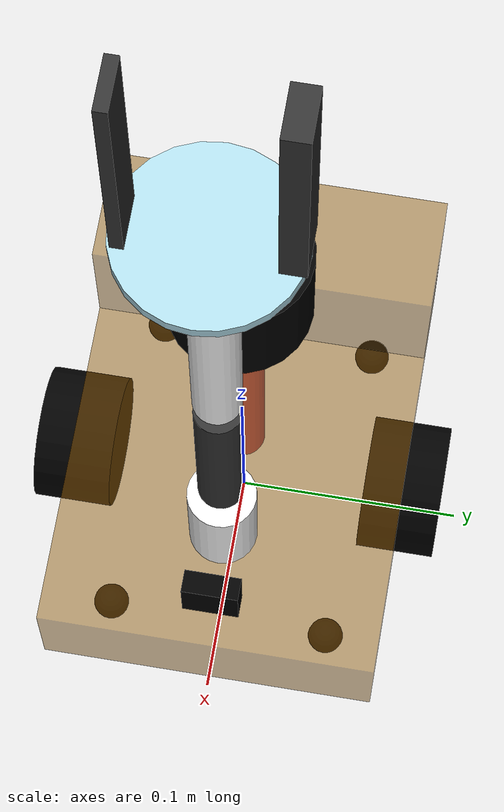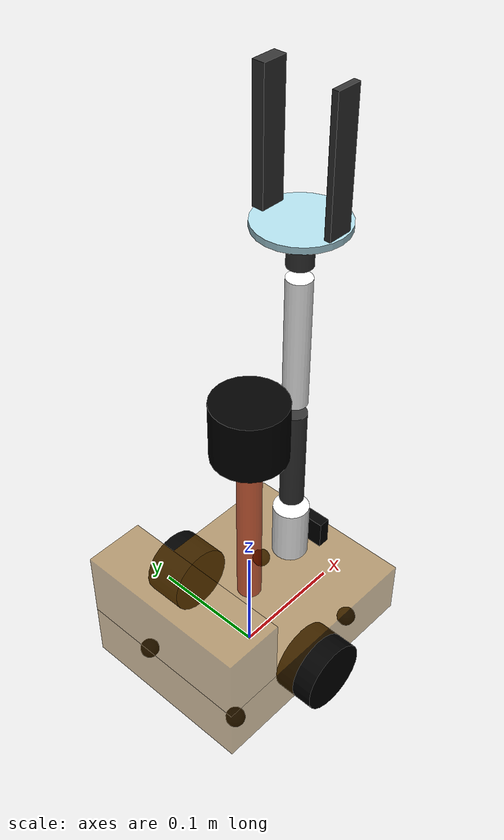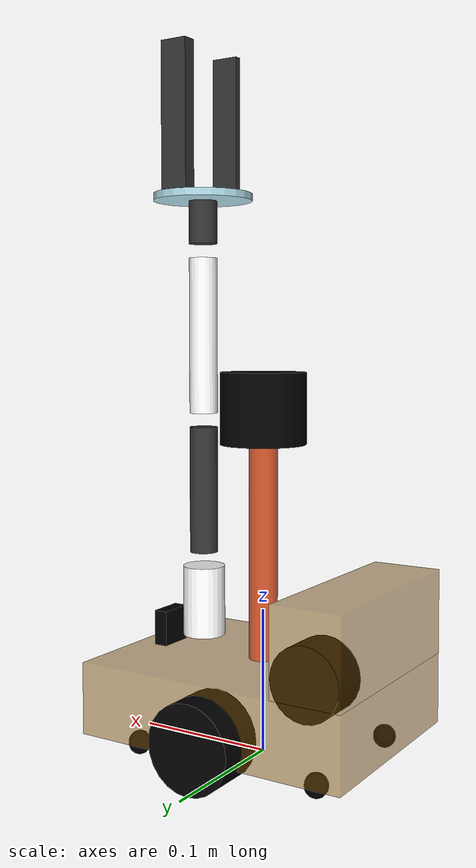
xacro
<robot name="my_car" xmlns:xacro="http://wiki.ros.org/xacro">
    <xacro:include filename="materials.xacro" />
    <xacro:include filename="inertial.xacro" />
    <xacro:include filename="my_base.urdf.xacro" />
    <xacro:include filename="my_camera.urdf.xacro" />
    <xacro:include filename="my_laser.urdf.xacro" />
    <xacro:include filename="move.urdf.xacro" />
    <xacro:include filename="camera_gazebo.urdf.xacro" />
    <xacro:include filename="laser_gazebo.urdf.xacro" />
    <xacro:include filename="car_arm.urdf.xacro" />
    <xacro:include filename="imu_gazebo.xacro" />
</robot>

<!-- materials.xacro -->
<robot name="material" xmlns:xacro="http://wiki.ros.org/xacro">
  <material name="black">
    <color rgba="0.0 0.0 0.0 1.0"/>
  </material>
  <material name="blue">
    <color rgba="0.0 0.0 0.8 1.0"/>
  </material>
  <material name="green">
    <color rgba="0.0 0.8 0.0 1.0"/>
  </material>
  <material name="grey">
    <color rgba="0.2 0.2 0.2 1.0"/>
  </material>
  <material name="orange">
    <color rgba="${255/255} ${108/255} ${10/255} 1.0"/>
  </material>
  <material name="brown">
    <color rgba="${222/255} ${207/255} ${195/255} 1.0"/>
  </material>
  <material name="red">
    <color rgba="0.8 0.0 0.0 1.0"/>
  </material>
  <material name="white">
    <color rgba="1.0 1.0 1.0 1.0"/>
  </material>
  <material name="yellow">
    <color rgba="1.0 1.0 0.0 1.0"/>
  </material>
  <material name="purple">
    <color rgba="0.5 0.0 0.5 1.0"/>
  </material>
  <material name="pink">
    <color rgba="1.0 0.75 0.8 1.0"/>
  </material>
  <material name="cyan">
    <color rgba="0.0 1.0 1.0 1.0"/>
  </material>
  <material name="magenta">
    <color rgba="1.0 0.0 1.0 1.0"/>
  </material>
  <material name="light_blue">
    <color rgba="0.68 0.85 0.9 1.0"/>
  </material>
  <material name="dark_green">
    <color rgba="0.0 0.39 0.0 1.0"/>
  </material>
  <material name="olive">
    <color rgba="0.5 0.5 0.0 1.0"/>
  </material>
  <material name="teal">
    <color rgba="0.0 0.5 0.5 1.0"/>
  </material>
</robot>

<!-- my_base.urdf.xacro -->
<robot name="my_base" xmlns:xacro="http://www.ros.org/wiki/xacro">
    <xacro:property name="PI" value="3.14159"/>
    <xacro:property name="base_footprint_radius" value="0.001" />
    <xacro:property name="base_link_l" value="0.2" />
    <xacro:property name="base_link_w" value="0.15" />
    <xacro:property name="base_link_h" value="0.05" />
    <xacro:property name="heavy_link_l" value="0.05" />
    <xacro:property name="heavy_link_w" value="0.15" />
    <xacro:property name="heavy_link_h" value="0.06" />
    <xacro:property name="heavy_link_m" value="0.5" />
    <xacro:property name="earth_space" value="0.016" />
    <!-- 离地间距 -->
    <xacro:property name="base_link_m" value="1.5" />
    <!-- 底盘 -->
    <link name="base_footprint">
        <visual>
            <geometry>
                <sphere radius="${base_footprint_radius}" />
            </geometry>
        </visual>
    </link>
    <link name="base_link">
        <visual>
            <geometry>
                <box size="${base_link_l} ${base_link_w} ${base_link_h}" />
            </geometry>
            <origin xyz="0 0 0" rpy="0 0 0" />
            <material name="white">
                <color rgba="0.5 0.3 0.0 0.5" />
            </material>
        </visual>
        <collision>
            <geometry>
                <box size="${base_link_l} ${base_link_w} ${base_link_h}" />
                <origin xyz="0 0 0" rpy="0 0 0" />
            </geometry>
        </collision>
        <xacro:Box_inertial_matrix m="${base_link_m}" l="${base_link_l}" w="${base_link_w}" h="${base_link_h}" />
    </link>
    <joint name="base_link2base_footprint" type="fixed">
        <parent link="base_footprint" />
        <child link="base_link" />
        <origin xyz="0 0 ${earth_space + base_link_h / 2 }" />
    </joint>
    <gazebo reference="base_link">
        <material>Gazebo/Blue</material>
    </gazebo>
    <link name="heavy_link">
        <visual>
            <geometry>
                <box size="${heavy_link_l} ${heavy_link_w} ${heavy_link_h}" />
            </geometry>
            <origin xyz="0 0 0" rpy="0 0 0" />
            <material name="white">
                <color rgba="0.5 0.3 0.0 0.5" />
            </material>
        </visual>
        <collision>
            <geometry>
                <box size="${heavy_link_l} ${heavy_link_w} ${heavy_link_h}" />
                <origin xyz="0 0 0" rpy="0 0 0" />
            </geometry>
        </collision>
        <xacro:Box_inertial_matrix m="${heavy_link_m}" l="${heavy_link_l}" w="${heavy_link_w}" h="${heavy_link_h}" />
    </link>
    <joint name="heavy_link2base_link" type="fixed">
        <parent link="base_link" />
        <child link="heavy_link" />
        <origin xyz="${-(base_link_l / 2 -heavy_link_l/2)} 0 ${base_link_h / 2+ heavy_link_h / 2 }" />
    </joint>
    <gazebo reference="heavy_link">
        <material>Gazebo/Blue</material>
    </gazebo>
    <!-- 驱动轮 -->
    <xacro:property name="wheel_radius" value="0.03" />
    <xacro:property name="wheel_length" value="0.035" />
    <xacro:property name="wheel_m" value="0.1" />
    <xacro:macro name="add_wheels" params="name flag">
        <link name="${name}_wheel">
            <visual>
                <geometry>
                    <cylinder radius="${wheel_radius}" length="${wheel_length}" />
                </geometry>
                <origin xyz="0.0 0.0 0.0" rpy="${PI / 2} 0.0 0.0" />
                <material name="black" />
            </visual>
            <collision>
                <geometry>
                    <cylinder radius="${wheel_radius}" length="${wheel_length}" />
                </geometry>
                <origin xyz="0.0 0.0 0.0" rpy="${PI / 2} 0.0 0.0" />
            </collision>
            <xacro:cylinder_inertial_matrix m="${wheel_m}" r="${wheel_radius}" h="${wheel_length}" />
        </link>
        <joint name="${name}_wheel2base_link" type="continuous">
            <parent link="base_link" />
            <child link="${name}_wheel" />
            <origin xyz="0 ${flag * base_link_w/2} ${-(earth_space + base_link_h / 2 - wheel_radius) }" />
            <axis xyz="0 1 0" />
        </joint>
        <gazebo reference="${name}_wheel">
            <material>Gazebo/Black</material>
            <mu1>100000000</mu1>
            <mu2>100000000</mu2>
            <kp>100000000</kp>
            <kd>1</kd>
        </gazebo>
    </xacro:macro>
    <xacro:add_wheels name="left" flag="1" />
    <xacro:add_wheels name="right" flag="-1" />
    <xacro:property name="support_wheel_radius" value="0.008" />
    <xacro:property name="support_wheel_distance" value="0.03" />
    <xacro:property name="support_wheel_m" value="0.03" />
    <!-- 支撑轮宏 -->
    <xacro:macro name="add_support_wheel" params="name flag number" >
        <link name="${name}_wheel_${number}">
            <visual>
                <geometry>
                    <sphere radius="${support_wheel_radius}" />
                </geometry>
                <origin xyz="0 0 0" rpy="0 0 0" />
                <material name="black" />
            </visual>
            <collision>
                <geometry>
                    <sphere radius="${support_wheel_radius}" />
                </geometry>
                <origin xyz="0 0 0" rpy="0 0 0" />
            </collision>
            <xacro:sphere_inertial_matrix m="${support_wheel_m}" r="${support_wheel_radius}" />
        </link>
        <joint name="${name}_wheel2base_link_${number}" type="continuous">
            <parent link="base_link" />
            <child link="${name}_wheel_${number}" />
            <origin xyz="${flag * (base_link_l / 2 - support_wheel_distance)} ${-0.05*(number-1)-0.05*(number-2)} ${-(base_link_h / 2 + support_wheel_radius)}" />
            <axis xyz="1 1 1" />
        </joint>
        <gazebo reference="${name}_wheel_${number}">
            <material>Gazebo/Black</material>
            <kp>100000000</kp>
            <kd>1</kd>
        </gazebo>
    </xacro:macro>
    <xacro:add_support_wheel name="front" flag="1" number="1"/>
    <xacro:add_support_wheel name="front" flag="1" number="2"/>
    <xacro:add_support_wheel name="back" flag="-1" number="1"/>
    <xacro:add_support_wheel name="back" flag="-1" number="2"/>
</robot>

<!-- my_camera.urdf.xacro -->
<!-- 摄像头相关的 xacro 文件 -->
<robot name="my_camera" xmlns:xacro="http://wiki.ros.org/xacro">
    <!-- 摄像头属性 -->
    <xacro:property name="camera_length" value="0.01" /> <!-- 摄像头长度(x) -->
    <xacro:property name="camera_width" value="0.025" /> <!-- 摄像头宽度(y) -->
    <xacro:property name="camera_height" value="0.025" /> <!-- 摄像头高度(z) -->
    <xacro:property name="camera_x" value="0.08" /> <!-- 摄像头安装的x坐标 -->
    <xacro:property name="camera_y" value="0.0" /> <!-- 摄像头安装的y坐标 -->
    <xacro:property name="camera_z" value="${base_link_h / 2 + camera_height / 2}" /> <!-- 摄像头安装的z坐标:底盘高度 / 2 + 摄像头高度 / 2  -->

    <xacro:property name="camera_m" value="0.01" /> <!-- 摄像头质量 -->

    <!-- 摄像头关节以及link -->
    <link name="camera">
        <visual>
            <geometry>
                <box size="${camera_length} ${camera_width} ${camera_height}" />
            </geometry>
            <origin xyz="0.0 0.0 0.0" rpy="0.0 0.0 0.0" />
            <material name="black" />
        </visual>
        <collision>
            <geometry>
                <box size="${camera_length} ${camera_width} ${camera_height}" />
            </geometry>
            <origin xyz="0.0 0.0 0.0" rpy="0.0 0.0 0.0" />
        </collision>
        <xacro:Box_inertial_matrix m="${camera_m}" l="${camera_length}" w="${camera_width}" h="${camera_height}" />
    </link>

    <joint name="camera2base_link" type="fixed">
        <parent link="base_link" />
        <child link="camera" />
        <origin xyz="${camera_x} ${camera_y} ${camera_z}" />
    </joint>
    <gazebo reference="camera">
        <material>Gazebo/Blue</material>
    </gazebo>
</robot>

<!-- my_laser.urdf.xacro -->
<!--
    小车底盘添加雷达
-->
<robot name="my_laser" xmlns:xacro="http://wiki.ros.org/xacro">

    <!-- 雷达支架 -->
    <xacro:property name="support_length" value="0.15" /> <!-- 支架长度 -->
    <xacro:property name="support_radius" value="0.01" /> <!-- 支架半径 -->
    <xacro:property name="support_x" value="0.0" /> <!-- 支架安装的x坐标 -->
    <xacro:property name="support_y" value="0.0" /> <!-- 支架安装的y坐标 -->
    <xacro:property name="support_z" value="${base_link_h / 2 + support_length / 2}" /> <!-- 支架安装的z坐标:底盘高度 / 2 + 支架高度 / 2  -->

    <xacro:property name="support_m" value="0.02" /> <!-- 支架质量 -->

    <link name="support">
        <visual>
            <geometry>
                <cylinder radius="${support_radius}" length="${support_length}" />
            </geometry>
            <origin xyz="0.0 0.0 0.0" rpy="0.0 0.0 0.0" />
            <material name="red">
                <color rgba="0.8 0.2 0.0 0.8" />
            </material>
        </visual>

        <collision>
            <geometry>
                <cylinder radius="${support_radius}" length="${support_length}" />
            </geometry>
            <origin xyz="0.0 0.0 0.0" rpy="0.0 0.0 0.0" />
        </collision>

        <xacro:cylinder_inertial_matrix m="${support_m}" r="${support_radius}" h="${support_length}" />

    </link>

    <joint name="support2base_link" type="fixed">
        <parent link="base_link" />
        <child link="support" />
        <origin xyz="${support_x} ${support_y} ${support_z}" />
    </joint>

    <gazebo reference="support">
        <material>Gazebo/White</material>
    </gazebo>

    <!-- 雷达属性 -->
    <xacro:property name="laser_length" value="0.05" /> <!-- 雷达长度 -->
    <xacro:property name="laser_radius" value="0.03" /> <!-- 雷达半径 -->
    <xacro:property name="laser_x" value="0.0" /> <!-- 雷达安装的x坐标 -->
    <xacro:property name="laser_y" value="0.0" /> <!-- 雷达安装的y坐标 -->
    <xacro:property name="laser_z" value="${support_length / 2 + laser_length / 2}" /> <!-- 雷达安装的z坐标:支架高度 / 2 + 雷达高度 / 2  -->

    <xacro:property name="laser_m" value="0.1" /> <!-- 雷达质量 -->

    <!-- 雷达关节以及link -->
    <link name="laser">
        <visual>
            <geometry>
                <cylinder radius="${laser_radius}" length="${laser_length}" />
            </geometry>
            <origin xyz="0.0 0.0 0.0" rpy="0.0 0.0 0.0" />
            <material name="black" />
        </visual>
        <collision>
            <geometry>
                <cylinder radius="${laser_radius}" length="${laser_length}" />
            </geometry>
            <origin xyz="0.0 0.0 0.0" rpy="0.0 0.0 0.0" />
        </collision>
        <xacro:cylinder_inertial_matrix m="${laser_m}" r="${laser_radius}" h="${laser_length}" />
    </link>

    <joint name="laser2support" type="fixed">
        <parent link="support" />
        <child link="laser" />
        <origin xyz="${laser_x} ${laser_y} ${laser_z}" />
    </joint>
    <gazebo reference="laser">
        <material>Gazebo/Black</material>
    </gazebo>
</robot>

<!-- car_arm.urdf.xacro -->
<robot name="car_arm" xmlns:xacro="http://ros.org/wiki/xacro">
    <!-- Defining the colors used in this robot -->
    <!-- link1 properties -->
    <xacro:property name="PI" value="3.1415926" />

    <xacro:property name="link1_width" value="0.015" />
    <xacro:property name="link1_len" value="0.05" />
    <xacro:property name="link1_m" value="0.02" />
    <!-- link2 properties -->
    <xacro:property name="link2_width" value="0.01" />
    <xacro:property name="link2_len" value="0.09" />
    <xacro:property name="link2_m" value="0.02" />
    <!-- link3 properties -->
    <xacro:property name="link3_width" value="0.01" />
    <xacro:property name="link3_len" value="0.11" />
    <xacro:property name="link3_m" value="0.02" />
    <!-- link4 properties -->
    <xacro:property name="link4_width" value="0.01" />
    <xacro:property name="link4_len" value="0.03" />
    <xacro:property name="link4_m" value="0.02" />
    <!-- link5 properties -->
    <xacro:property name="link5_width" value="0.035" />
    <xacro:property name="link5_len" value="0.005" />
    <xacro:property name="link5_m" value="0.02" />
    <!-- Left gripper -->
    <xacro:property name="left_gripper_len" value="0.1" />
    <xacro:property name="left_gripper_width" value="0.01" />
    <xacro:property name="left_gripper_h" value="0.02" />
    <xacro:property name="left_gripper_m" value="0.02" />
    <!-- Right gripper -->
    <xacro:property name="right_gripper_len" value="0.1" />
    <xacro:property name="right_gripper_width" value="0.005" />
    <xacro:property name="right_gripper_h" value="0.02" />
    <xacro:property name="right_gripper_m" value="0.02" />
    <!-- Gripper frame -->
    <xacro:property name="grasp_frame_radius" value="0.001" />
    <!-- /////////////////////////////////////   LINK1  ////////////////////////////////////////////// -->
    <link name="link1" >
        <visual>
            <origin xyz="0 0 ${link1_len/2}" rpy="0 0 0" />
            <geometry>
                <cylinder radius="${link1_width}" length="${link1_len}"/>
            </geometry>
            <material name="white" />
        </visual>
        <collision>
            <origin xyz="0  0 ${link1_len/2}" rpy="0 0 0" />
            <geometry>
                <cylinder radius="${link1_width}" length="${link1_len}"/>
            </geometry>
        </collision>
        <xacro:cylinder_inertial_matrix m="${link1_m}" r="${link1_width}" h="${link1_len}" />
    </link>
    <joint name="joint1" type="revolute">
        <parent link="base_link"/>
        <child link="link1"/>
        <origin xyz="0.05 0 ${base_link_h / 2 + 0.01}" rpy="0 0 0" />
        <axis xyz="0 0 1" />
        <limit effort="300" velocity="1" lower="-2.96" upper="2.96"/>

    </joint>
    <link name="link2" >
        <visual>
            <origin xyz="0 0 ${link2_len/2}" rpy="0 0 0" />
            <geometry>
                <cylinder radius="${link2_width}" length="${link2_len}"/>
            </geometry>
            <material name="grey" />
        </visual>
        <collision>
            <origin xyz="0  0 ${link2_len/2}" rpy="0 0 0" />
            <geometry>
                <cylinder radius="${link2_width}" length="${link2_len}"/>
            </geometry>
        </collision>
        <xacro:cylinder_inertial_matrix m="${link2_m}" r="${link2_width}" h="${link2_len}" />
    </link>
    <joint name="joint2" type="revolute">
        <parent link="link1"/>
        <child link="link2"/>
        <origin xyz="0 0 ${link1_len+0.01}" rpy="0 0 0" />
        <axis xyz="0 1 0" />
        <limit effort="300" velocity="1" lower="${-PI/2}" upper="${PI/2}"/>
    </joint>
    <link name="link3" >
        <visual>
            <origin xyz="0 0 ${link3_len/2}" rpy="0 0 0" />
            <geometry>
                <cylinder radius="${link3_width}" length="${link3_len}"/>
            </geometry>
            <material name="white" />
        </visual>
        <collision>
            <origin xyz="0  0 ${link3_len/2}" rpy="0 0 0" />
            <geometry>
                <cylinder radius="${link3_width}" length="${link3_len}"/>
            </geometry>
        </collision>
        <xacro:cylinder_inertial_matrix m="${link3_m}" r="${link3_width}" h="${link3_len}" />
    </link>
    <joint name="joint3" type="revolute">
        <parent link="link2"/>
        <child link="link3"/>
        <origin xyz="0 0 ${link2_len+0.01}" rpy="0 0 0" />
        <axis xyz="0 1 0" />
        <limit effort="300" velocity="1" lower="${-PI/2}" upper="${PI/2}"/>
    </joint>
    <link name="link4" >
        <visual>
            <origin xyz="0 0 ${link4_len/2}" rpy="0 0 0" />
            <geometry>
                <cylinder radius="${link4_width}" length="${link4_len}"/>
            </geometry>
            <material name="grey" />
        </visual>
        <collision>
            <origin xyz="0  0 ${link4_len/2}" rpy="0 0 0" />
            <geometry>
                <cylinder radius="${link4_width}" length="${link4_len}"/>
            </geometry>
        </collision>
        <xacro:cylinder_inertial_matrix m="${link4_m}" r="${link4_width}" h="${link4_len}" />
    </link>
    <joint name="joint4" type="revolute">
        <parent link="link3"/>
        <child link="link4"/>
        <origin xyz="0 0 ${link3_len+0.01}" rpy="0 0 0" />
        <axis xyz="0 1 0" />
        <limit effort="300" velocity="1" lower="${-PI/2}" upper="${PI/2}"/>
    </joint>
    <link name="link5" >
        <visual>
            <origin xyz="0 0 ${link5_len/2}" rpy="0 0 0" />
            <geometry>
                <cylinder radius="${link5_width}" length="${link5_len}"/>
            </geometry>
            <material name="light_blue" />
        </visual>
        <collision>
            <origin xyz="0  0 ${link5_len/2}" rpy="0 0 0" />
            <geometry>
                <cylinder radius="${link5_width}" length="${link5_len}"/>
            </geometry>
        </collision>
        <xacro:cylinder_inertial_matrix m="${link5_m}" r="${link5_width}" h="${link5_len}" />
    </link>
    <joint name="joint5" type="revolute">
        <parent link="link4"/>
        <child link="link5"/>
        <origin xyz="0 0 ${link4_len}" rpy="0 0 0" />
        <axis xyz="0 0 1" />
        <limit effort="300" velocity="1" lower="${-PI}" upper="${PI}"/>
    </joint>
    <link name="left_gripper" >
        <visual>
            <origin xyz="0 0 ${left_gripper_len/2}" rpy="0 ${PI/2} 0" />
            <geometry>
                <box size="${left_gripper_len} ${left_gripper_width} ${left_gripper_h}" />
            </geometry>
            <material name="grey" />
        </visual>
        <collision>
            <origin xyz="0 0 ${left_gripper_len/2}" rpy="0 ${PI/2} 0" />
            <geometry>
                <box size="${left_gripper_len} ${left_gripper_width} ${left_gripper_h}" />
            </geometry>
        </collision>
        <xacro:Box_inertial_matrix m="${left_gripper_m}" l="${left_gripper_len}" w="${left_gripper_width}" h="${left_gripper_h}" />
    </link>
    <joint name="left_gripper_joint" type="prismatic">
        <parent link="link5"/>
        <child link="left_gripper"/>
        <origin xyz="0 0.03 ${link5_len}" rpy="0 0 0" />
        <axis xyz="0 1 0" />
        <limit effort="100" lower="0" upper="0.05" velocity="1.0"/>
    </joint>
    <link name="right_gripper" >
        <visual>
            <origin xyz="0 0 ${right_gripper_len/2}" rpy="0 ${PI/2} 0" />
            <geometry>
                <box size="${right_gripper_len} ${right_gripper_width} ${right_gripper_h}" />
            </geometry>
            <material name="grey" />
        </visual>
        <collision>
            <origin xyz="0 0 ${right_gripper_len/2}" rpy="0 ${PI/2} 0" />
            <geometry>
                <box size="${right_gripper_len} ${right_gripper_width} ${right_gripper_h}" />
            </geometry>
        </collision>
        <xacro:Box_inertial_matrix m="${right_gripper_m}" l="${right_gripper_len}" w="${right_gripper_width}" h="${right_gripper_h}" />
    </link>
    <joint name="right_gripper_joint" type="prismatic">
        <parent link="link5"/>
        <child link="right_gripper"/>
        <origin xyz="0 -0.03 ${link5_len}" rpy="0 0 0" />
        <axis xyz="0 1 0" />
        <limit effort="100" lower="0" upper="0.05" velocity="1.0"/>
    </joint>
    <link name="grasping_frame"/>
    <joint name="grasping_frame_joint" type="fixed">
        <parent link="link5"/>
        <child link="grasping_frame"/>
        <origin xyz="0 0 ${link5_len}" rpy="0 0 0"/>
    </joint>
    <gazebo reference="link1">
        <material>Gazebo/Blue</material>
    </gazebo>
    <gazebo reference="link2">
        <material>Gazebo/White</material>
    </gazebo>
    <gazebo reference="link3">
        <material>Gazebo/Blue</material>
    </gazebo>
    <gazebo reference="link4">
        <material>Gazebo/Black</material>
    </gazebo>
    <gazebo reference="link5">
        <material>Gazebo/White</material>
    </gazebo>
    <gazebo reference="left_gripper">
        <mu1>1000</mu1>
        <mu2>1000</mu2>
        <kp>1000000.0</kp>
        <kd>100000.0</kd>
        <slip1>0</slip1>
        <slip2>0</slip2>
        <minDepth>0.001</minDepth>
        <maxVel>0</maxVel>
        <torsional>
            <ode>
                <coefficient>1000</coefficient>
                <slip>0</slip>
            </ode>
        </torsional>
    </gazebo>
    <gazebo reference="right_gripper">
        <mu1>1000</mu1>
        <mu2>1000</mu2>
        <kp>1000000.0</kp>
        <kd>100000.0</kd>
        <slip1>0</slip1>
        <slip2>0</slip2>
        <minDepth>0.001</minDepth>
        <maxVel>0</maxVel>
        <torsional>
            <ode>
                <coefficient>1000</coefficient>
                <slip>0</slip>
            </ode>
        </torsional>
    </gazebo>
    <xacro:macro name="transmission_block" params="joint_name">
        <transmission name="tran${joint_name}">
            <type>transmission_interface/SimpleTransmission</type>
            <joint name="joint${joint_name}">
                <hardwareInterface>hardware_interface/PositionJointInterface</hardwareInterface>
            </joint>
            <actuator name="motor${joint_name}">
                <hardwareInterface>hardware_interface/PositionJointInterface</hardwareInterface>
                <mechanicalReduction>1</mechanicalReduction>
            </actuator>
        </transmission>
    </xacro:macro>
    <xacro:transmission_block joint_name="1"/>
    <xacro:transmission_block joint_name="2"/>
    <xacro:transmission_block joint_name="3"/>
    <xacro:transmission_block joint_name="4"/>
    <xacro:transmission_block joint_name="5"/>
    <transmission name="tran_right_gripper_joint">
        <type>transmission_interface/SimpleTransmission</type>
        <joint name="right_gripper_joint">
            <hardwareInterface>hardware_interface/PositionJointInterface</hardwareInterface>
        </joint>
        <actuator name="motor_right_gripper_joint">
            <hardwareInterface>hardware_interface/PositionJointInterface</hardwareInterface>
            <mechanicalReduction>1</mechanicalReduction>
        </actuator>
    </transmission>
    <transmission name="tran_left_gripper_joint">
        <type>transmission_interface/SimpleTransmission</type>
        <joint name="left_gripper_joint">
            <hardwareInterface>hardware_interface/PositionJointInterface</hardwareInterface>
        </joint>
        <actuator name="motor_gripper_joint">
            <hardwareInterface>hardware_interface/PositionJointInterface</hardwareInterface>
            <mechanicalReduction>1</mechanicalReduction>
        </actuator>
    </transmission>
    <gazebo>
        <plugin name="gazebo_ros_control" filename="libgazebo_ros_control.so">
            <robotNamespace>/</robotNamespace>
        </plugin>
    </gazebo>
</robot>
